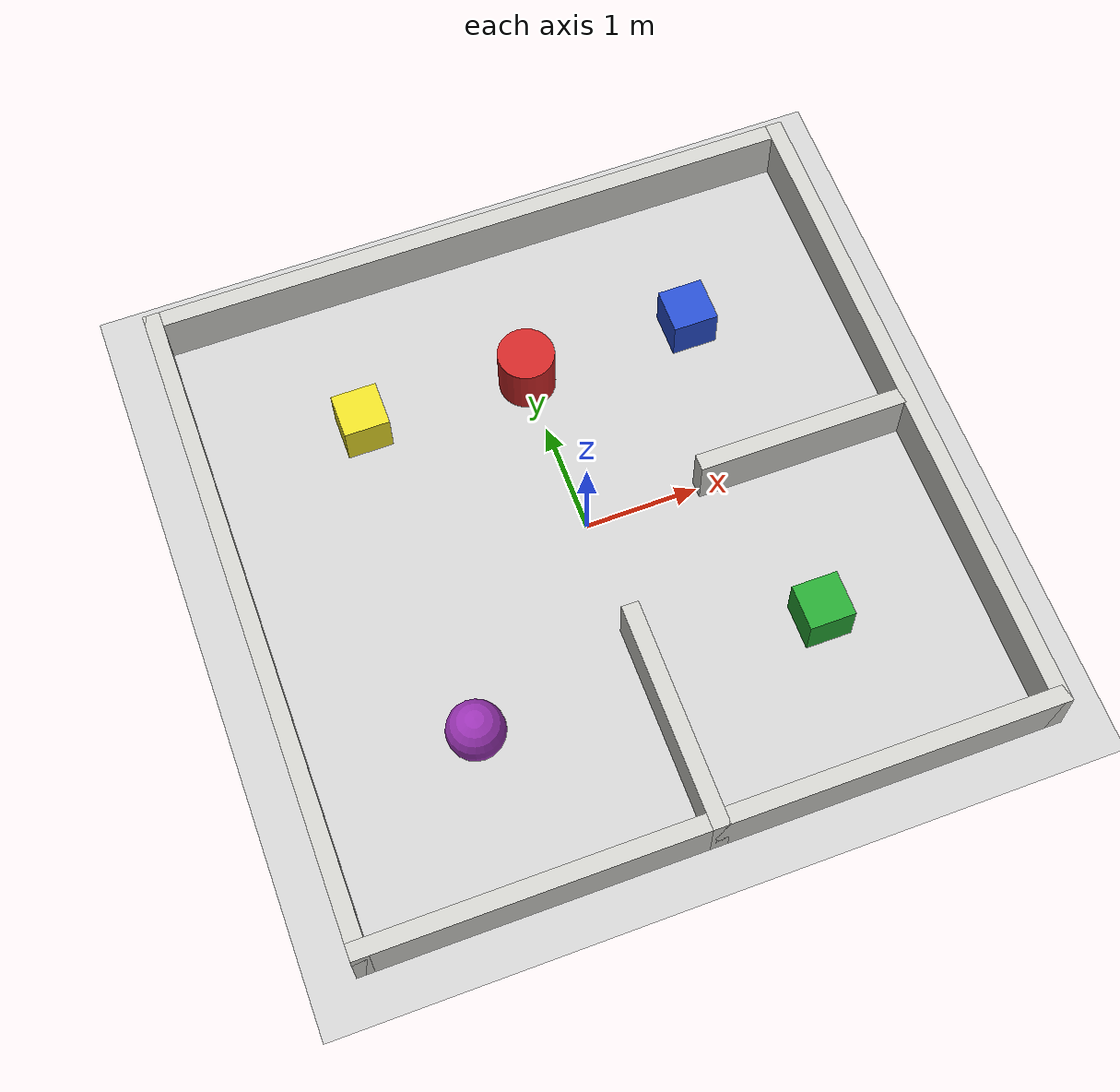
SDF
<sdf version="1.7">
 <world name="default">
  <light name="sun" type="directional">
   <pose>0 0 10 0 -0 0</pose>
   <diffuse>0.8 0.8 0.8 1</diffuse>
   <specular>0.2 0.2 0.2 1</specular>
   <attenuation>
    <range>1000</range>
    <constant>0.9</constant>
    <linear>0.01</linear>
    <quadratic>0.001</quadratic>
   </attenuation>
   <direction>-0.5 0.1 -0.9</direction>
   <spot><inner_angle>0</inner_angle><outer_angle>0</outer_angle><falloff>0</falloff></spot>
  </light>
  <model name="ground_plane">
   <static>1</static>
   <link name="link">
    <collision name="collision">
     <geometry><plane><normal>0 0 1</normal><size>100 100</size></plane></geometry>
     <surface><friction><ode><mu>100</mu><mu2>50</mu2></ode></friction></surface>
    </collision>
    <visual name="visual">
     <cast_shadows>0</cast_shadows>
     <geometry><plane><normal>0 0 1</normal><size>100 100</size></plane></geometry>
     <material>
      <script><uri>file://media/materials/scripts/gazebo.material</uri><name>Gazebo/Grey</name></script>
     </material>
    </visual>
   </link>
  </model>
  <gravity>0 0 -9.8</gravity>
  <magnetic_field>6e-06 2.3e-05 -4.2e-05</magnetic_field>
  <atmosphere type="adiabatic"/>
  <physics type="ode">
   <max_step_size>0.001</max_step_size>
   <real_time_factor>1</real_time_factor>
   <real_time_update_rate>1000</real_time_update_rate>
  </physics>
  <scene><ambient>0.4 0.4 0.4 1</ambient><background>0.7 0.7 0.7 1</background><shadows>1</shadows></scene>
  <spherical_coordinates>
   <surface_model>EARTH_WGS84</surface_model>
   <latitude_deg>0</latitude_deg>
   <longitude_deg>0</longitude_deg>
   <elevation>0</elevation>
   <heading_deg>0</heading_deg>
  </spherical_coordinates>
  <model name="4">
   <link name="Wall_0">
    <collision name="Wall_0_Collision">
     <geometry><box><size>6 0.15 1</size></box></geometry>
     <pose>0 0 0.25 0 -0 0</pose>
    </collision>
    <visual name="Wall_0_Visual">
     <pose>0 0 0.25 0 -0 0</pose>
     <geometry><box><size>6 0.15 0.5</size></box></geometry>
     <material>
      <script><uri>file://media/materials/scripts/gazebo.material</uri><name>Gazebo/CeilingTiled</name></script>
      <ambient>0.435294 0.796078 0.67451 1</ambient>
     </material>
     <meta><layer>0</layer></meta>
    </visual>
    <pose>-2.925 0 0 0 -0 -1.5708</pose>
   </link>
   <link name="Wall_14">
    <collision name="Wall_14_Collision">
     <geometry><box><size>2 0.15 0.5</size></box></geometry>
     <pose>0 0 0.25 0 -0 0</pose>
    </collision>
    <visual name="Wall_14_Visual">
     <pose>0 0 0.25 0 -0 0</pose>
     <geometry><box><size>2 0.15 0.5</size></box></geometry>
     <material>
      <script><uri>file://media/materials/scripts/gazebo.material</uri><name>Gazebo/CeilingTiled</name></script>
      <ambient>0.435294 0.796078 0.67451 1</ambient>
     </material>
     <meta><layer>0</layer></meta>
    </visual>
    <pose>2 0 0 0 -0 3.14159</pose>
   </link>
   <link name="Wall_16">
    <collision name="Wall_16_Collision">
     <geometry><box><size>6 0.15 0.5</size></box></geometry>
     <pose>0 0 0.25 0 -0 0</pose>
    </collision>
    <visual name="Wall_16_Visual">
     <pose>0 0 0.25 0 -0 0</pose>
     <geometry><box><size>6 0.15 0.5</size></box></geometry>
     <material>
      <script><uri>file://media/materials/scripts/gazebo.material</uri><name>Gazebo/CeilingTiled</name></script>
      <ambient>0.435294 0.796078 0.67451 1</ambient>
     </material>
     <meta><layer>0</layer></meta>
    </visual>
    <pose>2.925 0 0 0 -0 -1.5708</pose>
   </link>
   <link name="Wall_4">
    <collision name="Wall_4_Collision">
     <geometry><box><size>6 0.15 0.5</size></box></geometry>
     <pose>0 0 0.25 0 -0 0</pose>
    </collision>
    <visual name="Wall_4_Visual">
     <pose>0 0 0.25 0 -0 0</pose>
     <geometry><box><size>6 0.15 0.5</size></box></geometry>
     <material>
      <script><uri>file://media/materials/scripts/gazebo.material</uri><name>Gazebo/CeilingTiled</name></script>
      <ambient>0.435294 0.796078 0.67451 1</ambient>
     </material>
     <meta><layer>0</layer></meta>
    </visual>
    <pose>0 2.925 0 0 -0 3.14159</pose>
   </link>
   <link name="Wall_7">
    <collision name="Wall_7_Collision">
     <geometry><box><size>2 0.15 0.5</size></box></geometry>
     <pose>0 0 0.25 0 -0 0</pose>
    </collision>
    <visual name="Wall_7_Visual">
     <pose>0 0 0.25 0 -0 0</pose>
     <geometry><box><size>2 0.15 0.5</size></box></geometry>
     <material>
      <script><uri>file://media/materials/scripts/gazebo.material</uri><name>Gazebo/CeilingTiled</name></script>
      <ambient>0.435294 0.796078 0.67451 1</ambient>
     </material>
     <meta><layer>0</layer></meta>
    </visual>
    <pose>0 -2 0 0 -0 1.5708</pose>
   </link>
   <link name="Wall_9">
    <collision name="Wall_9_Collision">
     <geometry><box><size>6 0.15 0.5</size></box></geometry>
     <pose>0 0 0.25 0 -0 0</pose>
    </collision>
    <visual name="Wall_9_Visual">
     <pose>0 0 0.25 0 -0 0</pose>
     <geometry><box><size>6 0.15 0.5</size></box></geometry>
     <material>
      <script><uri>file://media/materials/scripts/gazebo.material</uri><name>Gazebo/CeilingTiled</name></script>
      <ambient>0.435294 0.796078 0.67451 1</ambient>
     </material>
     <meta><layer>0</layer></meta>
    </visual>
    <pose>0 -2.925 0 0 -0 0</pose>
   </link>
   <static>1</static>
  </model>
  <model name="obstacle1">
   <pose>1.5 1.5 0.25 0 -0 0</pose>
   <link name="link">
    <inertial>
     <mass>1</mass>
     <inertia>
      <ixx>0.166667</ixx>
      <ixy>0</ixy>
      <ixz>0</ixz>
      <iyy>0.166667</iyy>
      <iyz>0</iyz>
      <izz>0.166667</izz>
     </inertia>
    </inertial>
    <collision name="obstacle_1"><geometry><box><size>0.4 0.4 0.4</size></box></geometry></collision>
    <visual name="obstacle_1">
     <geometry><box><size>0.4 0.4 0.4</size></box></geometry>
     <material>
      <script><name>Gazebo/Blue</name><uri>file://media/materials/scripts/gazebo.material</uri></script>
     </material>
    </visual>
   </link>
  </model>
  <model name="obstacle2">
   <pose>1.5 -1.5 0.25 0 -0 0</pose>
   <link name="link">
    <inertial>
     <mass>1</mass>
     <inertia>
      <ixx>0.166667</ixx>
      <ixy>0</ixy>
      <ixz>0</ixz>
      <iyy>0.166667</iyy>
      <iyz>0</iyz>
      <izz>0.166667</izz>
     </inertia>
    </inertial>
    <collision name="obstacle_2"><geometry><box><size>0.4 0.4 0.4</size></box></geometry></collision>
    <visual name="obstacle_2">
     <geometry><box><size>0.4 0.4 0.4</size></box></geometry>
     <material>
      <script><name>Gazebo/Green</name><uri>file://media/materials/scripts/gazebo.material</uri></script>
     </material>
    </visual>
   </link>
  </model>
  <model name="obstacle3">
   <pose>-1.5 -1.5 0.25 0 -0 0</pose>
   <link name="link">
    <inertial>
     <mass>1</mass>
     <inertia><ixx>0.1</ixx><ixy>0</ixy><ixz>0</ixz><iyy>0.1</iyy><iyz>0</iyz><izz>0.1</izz></inertia>
    </inertial>
    <collision name="obstacle_3"><geometry><sphere><radius>0.25</radius></sphere></geometry></collision>
    <visual name="obstacle_3">
     <geometry><sphere><radius>0.25</radius></sphere></geometry>
     <material>
      <script><name>Gazebo/Purple</name><uri>file://media/materials/scripts/gazebo.material</uri></script>
     </material>
    </visual>
   </link>
  </model>
  <model name="obstacle4">
   <pose>-1.5 1.5 0.25 0 -0 0</pose>
   <link name="link">
    <inertial>
     <mass>1</mass>
     <inertia>
      <ixx>0.166667</ixx>
      <ixy>0</ixy>
      <ixz>0</ixz>
      <iyy>0.166667</iyy>
      <iyz>0</iyz>
      <izz>0.166667</izz>
     </inertia>
    </inertial>
    <collision name="obstacle_4"><geometry><box><size>0.4 0.4 0.4</size></box></geometry></collision>
    <visual name="obstacle_4">
     <geometry><box><size>0.4 0.4 0.4</size></box></geometry>
     <material>
      <script><name>Gazebo/Yellow</name><uri>file://media/materials/scripts/gazebo.material</uri></script>
     </material>
    </visual>
   </link>
  </model>
  <model name="obstacle5">
   <pose>0 1.5 0.25 0 -0 0</pose>
   <link name="link">
    <inertial>
     <mass>1</mass>
     <inertia><ixx>0.145833</ixx><ixy>0</ixy><ixz>0</ixz><iyy>0.145833</iyy><iyz>0</iyz><izz>0.125</izz></inertia>
    </inertial>
    <collision name="obstacle_5">
     <geometry><cylinder><radius>0.25</radius><length>0.5</length></cylinder></geometry>
    </collision>
    <visual name="obstacle_5">
     <geometry><cylinder><radius>0.25</radius><length>0.5</length></cylinder></geometry>
     <material>
      <script><name>Gazebo/Red</name><uri>file://media/materials/scripts/gazebo.material</uri></script>
     </material>
    </visual>
   </link>
  </model>
 </world>
</sdf>
